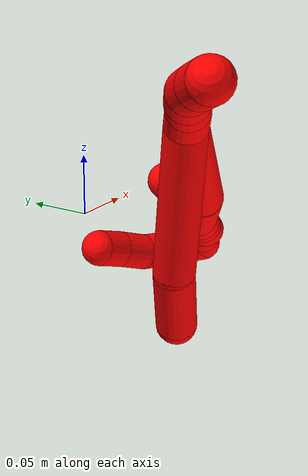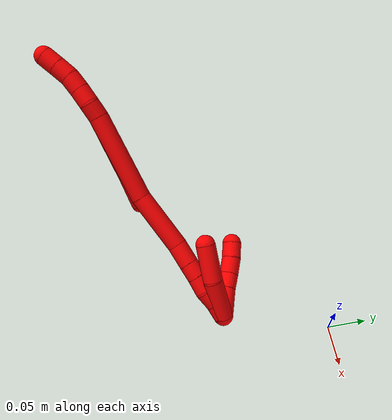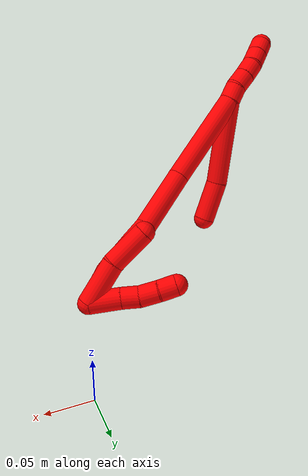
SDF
<sdf version="1.7">
 <world name="default">
  <model name="2">
   <static>0</static>
   <link name="2">
    <collision name="collision-cylinder-e_1_2_8">
     <pose>-0.008513 -0.026144 -0.042823 2.59347 -0.168069 -0.582214</pose>
     <geometry><cylinder><radius>0.0125</radius><length>0.101779</length></cylinder></geometry>
     <surface>
      <friction><ode><mu>1.16</mu><mu2>1.16</mu2><slip1>0</slip1><slip2>0</slip2></ode></friction>
      <contact><ode><kp>1e+06</kp><kd>1</kd><max_vel>0</max_vel><min_depth>0.001</min_depth></ode></contact>
     </surface>
    </collision>
    <visual name="visual-cylinder-e_1_2_8">
     <pose>-0.008513 -0.026144 -0.042823 2.59347 -0.168069 -0.582214</pose>
     <geometry><cylinder><radius>0.0125</radius><length>0.101779</length></cylinder></geometry>
     <material><ambient>1 0 0 1</ambient></material>
    </visual>
    <collision name="collision-cylinder-e_2_8_6">
     <pose>-0.0187 -0.060627 -0.108206 2.78755 -0.069496 -0.383846</pose>
     <geometry><cylinder><radius>0.0125</radius><length>0.048221</length></cylinder></geometry>
     <surface>
      <friction><ode><mu>1.16</mu><mu2>1.16</mu2><slip1>0</slip1><slip2>0</slip2></ode></friction>
      <contact><ode><kp>1e+06</kp><kd>1</kd><max_vel>0</max_vel><min_depth>0.001</min_depth></ode></contact>
     </surface>
    </collision>
    <visual name="visual-cylinder-e_2_8_6">
     <pose>-0.0187 -0.060627 -0.108206 2.78755 -0.069496 -0.383846</pose>
     <geometry><cylinder><radius>0.0125</radius><length>0.048221</length></cylinder></geometry>
     <material><ambient>1 0 0 1</ambient></material>
    </visual>
    <collision name="collision-cylinder-e_1_2_9">
     <pose>0.001302 9.3e-05 0.009914 -0.009346 0.130563 -0.000611</pose>
     <geometry><cylinder><radius>0.0125</radius><length>0.02</length></cylinder></geometry>
     <surface>
      <friction><ode><mu>1.16</mu><mu2>1.16</mu2><slip1>0</slip1><slip2>0</slip2></ode></friction>
      <contact><ode><kp>1e+06</kp><kd>1</kd><max_vel>0</max_vel><min_depth>0.001</min_depth></ode></contact>
     </surface>
    </collision>
    <visual name="visual-cylinder-e_1_2_9">
     <pose>0.001302 9.3e-05 0.009914 -0.009346 0.130563 -0.000611</pose>
     <geometry><cylinder><radius>0.0125</radius><length>0.02</length></cylinder></geometry>
     <material><ambient>1 0 0 1</ambient></material>
    </visual>
    <collision name="collision-cylinder-e_2_9_10">
     <pose>0.002982 -0.002135 0.029549 0.234358 0.037866 0.004458</pose>
     <geometry><cylinder><radius>0.0125</radius><length>0.02</length></cylinder></geometry>
     <surface>
      <friction><ode><mu>1.16</mu><mu2>1.16</mu2><slip1>0</slip1><slip2>0</slip2></ode></friction>
      <contact><ode><kp>1e+06</kp><kd>1</kd><max_vel>0</max_vel><min_depth>0.001</min_depth></ode></contact>
     </surface>
    </collision>
    <visual name="visual-cylinder-e_2_9_10">
     <pose>0.002982 -0.002135 0.029549 0.234358 0.037866 0.004458</pose>
     <geometry><cylinder><radius>0.0125</radius><length>0.02</length></cylinder></geometry>
     <material><ambient>1 0 0 1</ambient></material>
    </visual>
    <collision name="collision-cylinder-e_3_10_11">
     <pose>0.00426 -0.006789 0.04895 0.236501 0.090053 0.010706</pose>
     <geometry><cylinder><radius>0.0125</radius><length>0.02</length></cylinder></geometry>
     <surface>
      <friction><ode><mu>1.16</mu><mu2>1.16</mu2><slip1>0</slip1><slip2>0</slip2></ode></friction>
      <contact><ode><kp>1e+06</kp><kd>1</kd><max_vel>0</max_vel><min_depth>0.001</min_depth></ode></contact>
     </surface>
    </collision>
    <visual name="visual-cylinder-e_3_10_11">
     <pose>0.00426 -0.006789 0.04895 0.236501 0.090053 0.010706</pose>
     <geometry><cylinder><radius>0.0125</radius><length>0.02</length></cylinder></geometry>
     <material><ambient>1 0 0 1</ambient></material>
    </visual>
    <collision name="collision-cylinder-e_4_11_12">
     <pose>0.007977 -0.012264 0.067699 0.333546 0.285584 0.048394</pose>
     <geometry><cylinder><radius>0.0125</radius><length>0.02</length></cylinder></geometry>
     <surface>
      <friction><ode><mu>1.16</mu><mu2>1.16</mu2><slip1>0</slip1><slip2>0</slip2></ode></friction>
      <contact><ode><kp>1e+06</kp><kd>1</kd><max_vel>0</max_vel><min_depth>0.001</min_depth></ode></contact>
     </surface>
    </collision>
    <visual name="visual-cylinder-e_4_11_12">
     <pose>0.007977 -0.012264 0.067699 0.333546 0.285584 0.048394</pose>
     <geometry><cylinder><radius>0.0125</radius><length>0.02</length></cylinder></geometry>
     <material><ambient>1 0 0 1</ambient></material>
    </visual>
    <collision name="collision-cylinder-e_5_12_5">
     <pose>0.013742 -0.01872 0.085727 0.354246 0.299209 0.053948</pose>
     <geometry><cylinder><radius>0.0125</radius><length>0.02</length></cylinder></geometry>
     <surface>
      <friction><ode><mu>1.16</mu><mu2>1.16</mu2><slip1>0</slip1><slip2>0</slip2></ode></friction>
      <contact><ode><kp>1e+06</kp><kd>1</kd><max_vel>0</max_vel><min_depth>0.001</min_depth></ode></contact>
     </surface>
    </collision>
    <visual name="visual-cylinder-e_5_12_5">
     <pose>0.013742 -0.01872 0.085727 0.354246 0.299209 0.053948</pose>
     <geometry><cylinder><radius>0.0125</radius><length>0.02</length></cylinder></geometry>
     <material><ambient>1 0 0 1</ambient></material>
    </visual>
    <collision name="collision-cylinder-e_1_2_13">
     <pose>0.001168 0.002166 -0.056493 -3.10328 0.020651 -0.988623</pose>
     <geometry><cylinder><radius>0.0125</radius><length>0.113093</length></cylinder></geometry>
     <surface>
      <friction><ode><mu>1.16</mu><mu2>1.16</mu2><slip1>0</slip1><slip2>0</slip2></ode></friction>
      <contact><ode><kp>1e+06</kp><kd>1</kd><max_vel>0</max_vel><min_depth>0.001</min_depth></ode></contact>
     </surface>
    </collision>
    <visual name="visual-cylinder-e_1_2_13">
     <pose>0.001168 0.002166 -0.056493 -3.10328 0.020651 -0.988623</pose>
     <geometry><cylinder><radius>0.0125</radius><length>0.113093</length></cylinder></geometry>
     <material><ambient>1 0 0 1</ambient></material>
    </visual>
    <collision name="collision-cylinder-e_2_13_14">
     <pose>-0.001103 0.012246 -0.150079 -2.93138 -0.090398 0.810062</pose>
     <geometry><cylinder><radius>0.0125</radius><length>0.076168</length></cylinder></geometry>
     <surface>
      <friction><ode><mu>1.16</mu><mu2>1.16</mu2><slip1>0</slip1><slip2>0</slip2></ode></friction>
      <contact><ode><kp>1e+06</kp><kd>1</kd><max_vel>0</max_vel><min_depth>0.001</min_depth></ode></contact>
     </surface>
    </collision>
    <visual name="visual-cylinder-e_2_13_14">
     <pose>-0.001103 0.012246 -0.150079 -2.93138 -0.090398 0.810062</pose>
     <geometry><cylinder><radius>0.0125</radius><length>0.076168</length></cylinder></geometry>
     <material><ambient>1 0 0 1</ambient></material>
    </visual>
    <collision name="collision-cylinder-e_3_14_15">
     <pose>-0.004125 0.02375 -0.20083 -2.88451 0.029449 -0.22688</pose>
     <geometry><cylinder><radius>0.0125</radius><length>0.028254</length></cylinder></geometry>
     <surface>
      <friction><ode><mu>1.16</mu><mu2>1.16</mu2><slip1>0</slip1><slip2>0</slip2></ode></friction>
      <contact><ode><kp>1e+06</kp><kd>1</kd><max_vel>0</max_vel><min_depth>0.001</min_depth></ode></contact>
     </surface>
    </collision>
    <visual name="visual-cylinder-e_3_14_15">
     <pose>-0.004125 0.02375 -0.20083 -2.88451 0.029449 -0.22688</pose>
     <geometry><cylinder><radius>0.0125</radius><length>0.028254</length></cylinder></geometry>
     <material><ambient>1 0 0 1</ambient></material>
    </visual>
    <collision name="collision-cylinder-e_4_15_16">
     <pose>-0.003537 0.029827 -0.224185 -2.89061 0.017203 -0.136158</pose>
     <geometry><cylinder><radius>0.0125</radius><length>0.020027</length></cylinder></geometry>
     <surface>
      <friction><ode><mu>1.16</mu><mu2>1.16</mu2><slip1>0</slip1><slip2>0</slip2></ode></friction>
      <contact><ode><kp>1e+06</kp><kd>1</kd><max_vel>0</max_vel><min_depth>0.001</min_depth></ode></contact>
     </surface>
    </collision>
    <visual name="visual-cylinder-e_4_15_16">
     <pose>-0.003537 0.029827 -0.224185 -2.89061 0.017203 -0.136158</pose>
     <geometry><cylinder><radius>0.0125</radius><length>0.020027</length></cylinder></geometry>
     <material><ambient>1 0 0 1</ambient></material>
    </visual>
    <collision name="collision-cylinder-e_5_16_17">
     <pose>-0.002706 0.034509 -0.244098 -2.9299 0.062922 -0.57598</pose>
     <geometry><cylinder><radius>0.0125</radius><length>0.020939</length></cylinder></geometry>
     <surface>
      <friction><ode><mu>1.16</mu><mu2>1.16</mu2><slip1>0</slip1><slip2>0</slip2></ode></friction>
      <contact><ode><kp>1e+06</kp><kd>1</kd><max_vel>0</max_vel><min_depth>0.001</min_depth></ode></contact>
     </surface>
    </collision>
    <visual name="visual-cylinder-e_5_16_17">
     <pose>-0.002706 0.034509 -0.244098 -2.9299 0.062922 -0.57598</pose>
     <geometry><cylinder><radius>0.0125</radius><length>0.020939</length></cylinder></geometry>
     <material><ambient>1 0 0 1</ambient></material>
    </visual>
    <collision name="collision-cylinder-e_6_17_18">
     <pose>-0.003981 0.038146 -0.264467 -3.00059 -0.186369 1.8474</pose>
     <geometry><cylinder><radius>0.0125</radius><length>0.020871</length></cylinder></geometry>
     <surface>
      <friction><ode><mu>1.16</mu><mu2>1.16</mu2><slip1>0</slip1><slip2>0</slip2></ode></friction>
      <contact><ode><kp>1e+06</kp><kd>1</kd><max_vel>0</max_vel><min_depth>0.001</min_depth></ode></contact>
     </surface>
    </collision>
    <visual name="visual-cylinder-e_6_17_18">
     <pose>-0.003981 0.038146 -0.264467 -3.00059 -0.186369 1.8474</pose>
     <geometry><cylinder><radius>0.0125</radius><length>0.020871</length></cylinder></geometry>
     <material><ambient>1 0 0 1</ambient></material>
    </visual>
    <collision name="collision-cylinder-e_7_18_1">
     <pose>-0.006253 0.040527 -0.284896 -3.05038 -0.032769 0.689393</pose>
     <geometry><cylinder><radius>0.0125</radius><length>0.020649</length></cylinder></geometry>
     <surface>
      <friction><ode><mu>1.16</mu><mu2>1.16</mu2><slip1>0</slip1><slip2>0</slip2></ode></friction>
      <contact><ode><kp>1e+06</kp><kd>1</kd><max_vel>0</max_vel><min_depth>0.001</min_depth></ode></contact>
     </surface>
    </collision>
    <visual name="visual-cylinder-e_7_18_1">
     <pose>-0.006253 0.040527 -0.284896 -3.05038 -0.032769 0.689393</pose>
     <geometry><cylinder><radius>0.0125</radius><length>0.020649</length></cylinder></geometry>
     <material><ambient>1 0 0 1</ambient></material>
    </visual>
    <collision name="collision-cylinder-e_1_1_19">
     <pose>-0.019443 0.036124 -0.283406 0.426228 -0.782674 -0.178109</pose>
     <geometry><cylinder><radius>0.0125</radius><length>0.03645</length></cylinder></geometry>
     <surface>
      <friction><ode><mu>1.16</mu><mu2>1.16</mu2><slip1>0</slip1><slip2>0</slip2></ode></friction>
      <contact><ode><kp>1e+06</kp><kd>1</kd><max_vel>0</max_vel><min_depth>0.001</min_depth></ode></contact>
     </surface>
    </collision>
    <visual name="visual-cylinder-e_1_1_19">
     <pose>-0.019443 0.036124 -0.283406 0.426228 -0.782674 -0.178109</pose>
     <geometry><cylinder><radius>0.0125</radius><length>0.03645</length></cylinder></geometry>
     <material><ambient>1 0 0 1</ambient></material>
    </visual>
    <collision name="collision-cylinder-e_2_19_20">
     <pose>-0.040334 0.028137 -0.265485 0.405831 -0.876066 -0.192142</pose>
     <geometry><cylinder><radius>0.0125</radius><length>0.020929</length></cylinder></geometry>
     <surface>
      <friction><ode><mu>1.16</mu><mu2>1.16</mu2><slip1>0</slip1><slip2>0</slip2></ode></friction>
      <contact><ode><kp>1e+06</kp><kd>1</kd><max_vel>0</max_vel><min_depth>0.001</min_depth></ode></contact>
     </surface>
    </collision>
    <visual name="visual-cylinder-e_2_19_20">
     <pose>-0.040334 0.028137 -0.265485 0.405831 -0.876066 -0.192142</pose>
     <geometry><cylinder><radius>0.0125</radius><length>0.020929</length></cylinder></geometry>
     <material><ambient>1 0 0 1</ambient></material>
    </visual>
    <collision name="collision-cylinder-e_3_20_21">
     <pose>-0.056207 0.024476 -0.251282 0.12558 -0.767975 -0.050796</pose>
     <geometry><cylinder><radius>0.0125</radius><length>0.022552</length></cylinder></geometry>
     <surface>
      <friction><ode><mu>1.16</mu><mu2>1.16</mu2><slip1>0</slip1><slip2>0</slip2></ode></friction>
      <contact><ode><kp>1e+06</kp><kd>1</kd><max_vel>0</max_vel><min_depth>0.001</min_depth></ode></contact>
     </surface>
    </collision>
    <visual name="visual-cylinder-e_3_20_21">
     <pose>-0.056207 0.024476 -0.251282 0.12558 -0.767975 -0.050796</pose>
     <geometry><cylinder><radius>0.0125</radius><length>0.022552</length></cylinder></geometry>
     <material><ambient>1 0 0 1</ambient></material>
    </visual>
    <collision name="collision-cylinder-e_4_21_4">
     <pose>-0.070241 0.021592 -0.235571 0.239136 -0.666165 -0.083083</pose>
     <geometry><cylinder><radius>0.0125</radius><length>0.020069</length></cylinder></geometry>
     <surface>
      <friction><ode><mu>1.16</mu><mu2>1.16</mu2><slip1>0</slip1><slip2>0</slip2></ode></friction>
      <contact><ode><kp>1e+06</kp><kd>1</kd><max_vel>0</max_vel><min_depth>0.001</min_depth></ode></contact>
     </surface>
    </collision>
    <visual name="visual-cylinder-e_4_21_4">
     <pose>-0.070241 0.021592 -0.235571 0.239136 -0.666165 -0.083083</pose>
     <geometry><cylinder><radius>0.0125</radius><length>0.020069</length></cylinder></geometry>
     <material><ambient>1 0 0 1</ambient></material>
    </visual>
    <collision name="collision-cylinder-e_1_1_22">
     <pose>-0.009211 0.046575 -0.269639 -0.197482 -0.100267 0.009941</pose>
     <geometry><cylinder><radius>0.0125</radius><length>0.052339</length></cylinder></geometry>
     <surface>
      <friction><ode><mu>1.16</mu><mu2>1.16</mu2><slip1>0</slip1><slip2>0</slip2></ode></friction>
      <contact><ode><kp>1e+06</kp><kd>1</kd><max_vel>0</max_vel><min_depth>0.001</min_depth></ode></contact>
     </surface>
    </collision>
    <visual name="visual-cylinder-e_1_1_22">
     <pose>-0.009211 0.046575 -0.269639 -0.197482 -0.100267 0.009941</pose>
     <geometry><cylinder><radius>0.0125</radius><length>0.052339</length></cylinder></geometry>
     <material><ambient>1 0 0 1</ambient></material>
    </visual>
    <collision name="collision-cylinder-e_2_22_3">
     <pose>-0.018434 0.05261 -0.221229 -0.040432 -0.280773 0.005714</pose>
     <geometry><cylinder><radius>0.0125</radius><length>0.047661</length></cylinder></geometry>
     <surface>
      <friction><ode><mu>1.16</mu><mu2>1.16</mu2><slip1>0</slip1><slip2>0</slip2></ode></friction>
      <contact><ode><kp>1e+06</kp><kd>1</kd><max_vel>0</max_vel><min_depth>0.001</min_depth></ode></contact>
     </surface>
    </collision>
    <visual name="visual-cylinder-e_2_22_3">
     <pose>-0.018434 0.05261 -0.221229 -0.040432 -0.280773 0.005714</pose>
     <geometry><cylinder><radius>0.0125</radius><length>0.047661</length></cylinder></geometry>
     <material><ambient>1 0 0 1</ambient></material>
    </visual>
    <collision name="collision-sphere-3">
     <pose>-0.025037 0.053535 -0.19835 0 -0 0</pose>
     <geometry><sphere><radius>0.0125</radius></sphere></geometry>
     <surface>
      <friction><ode><mu>1.16</mu><mu2>1.16</mu2><slip1>0</slip1><slip2>0</slip2></ode></friction>
      <contact><ode><kp>1e+06</kp><kd>1</kd><max_vel>0</max_vel><min_depth>0.001</min_depth></ode></contact>
     </surface>
    </collision>
    <visual name="visual-sphere-3">
     <pose>-0.025037 0.053535 -0.19835 0 -0 0</pose>
     <geometry><sphere><radius>0.0125</radius></sphere></geometry>
     <material><ambient>1 0 0 1</ambient></material>
    </visual>
    <collision name="collision-sphere-22">
     <pose>-0.011831 0.051684 -0.244107 0 -0 0</pose>
     <geometry><sphere><radius>0.0125</radius></sphere></geometry>
     <surface>
      <friction><ode><mu>1.16</mu><mu2>1.16</mu2><slip1>0</slip1><slip2>0</slip2></ode></friction>
      <contact><ode><kp>1e+06</kp><kd>1</kd><max_vel>0</max_vel><min_depth>0.001</min_depth></ode></contact>
     </surface>
    </collision>
    <visual name="visual-sphere-22">
     <pose>-0.011831 0.051684 -0.244107 0 -0 0</pose>
     <geometry><sphere><radius>0.0125</radius></sphere></geometry>
     <material><ambient>1 0 0 1</ambient></material>
    </visual>
    <collision name="collision-sphere-4">
     <pose>-0.076442 0.019723 -0.227906 0 -0 0</pose>
     <geometry><sphere><radius>0.0125</radius></sphere></geometry>
     <surface>
      <friction><ode><mu>1.16</mu><mu2>1.16</mu2><slip1>0</slip1><slip2>0</slip2></ode></friction>
      <contact><ode><kp>1e+06</kp><kd>1</kd><max_vel>0</max_vel><min_depth>0.001</min_depth></ode></contact>
     </surface>
    </collision>
    <visual name="visual-sphere-4">
     <pose>-0.076442 0.019723 -0.227906 0 -0 0</pose>
     <geometry><sphere><radius>0.0125</radius></sphere></geometry>
     <material><ambient>1 0 0 1</ambient></material>
    </visual>
    <collision name="collision-sphere-21">
     <pose>-0.06404 0.02346 -0.243235 0 -0 0</pose>
     <geometry><sphere><radius>0.0125</radius></sphere></geometry>
     <surface>
      <friction><ode><mu>1.16</mu><mu2>1.16</mu2><slip1>0</slip1><slip2>0</slip2></ode></friction>
      <contact><ode><kp>1e+06</kp><kd>1</kd><max_vel>0</max_vel><min_depth>0.001</min_depth></ode></contact>
     </surface>
    </collision>
    <visual name="visual-sphere-21">
     <pose>-0.06404 0.02346 -0.243235 0 -0 0</pose>
     <geometry><sphere><radius>0.0125</radius></sphere></geometry>
     <material><ambient>1 0 0 1</ambient></material>
    </visual>
    <collision name="collision-sphere-20">
     <pose>-0.048373 0.025492 -0.25933 0 -0 0</pose>
     <geometry><sphere><radius>0.0125</radius></sphere></geometry>
     <surface>
      <friction><ode><mu>1.16</mu><mu2>1.16</mu2><slip1>0</slip1><slip2>0</slip2></ode></friction>
      <contact><ode><kp>1e+06</kp><kd>1</kd><max_vel>0</max_vel><min_depth>0.001</min_depth></ode></contact>
     </surface>
    </collision>
    <visual name="visual-sphere-20">
     <pose>-0.048373 0.025492 -0.25933 0 -0 0</pose>
     <geometry><sphere><radius>0.0125</radius></sphere></geometry>
     <material><ambient>1 0 0 1</ambient></material>
    </visual>
    <collision name="collision-sphere-11">
     <pose>0.00516 -0.009123 0.058633 0 -0 0</pose>
     <geometry><sphere><radius>0.0125</radius></sphere></geometry>
     <surface>
      <friction><ode><mu>1.16</mu><mu2>1.16</mu2><slip1>0</slip1><slip2>0</slip2></ode></friction>
      <contact><ode><kp>1e+06</kp><kd>1</kd><max_vel>0</max_vel><min_depth>0.001</min_depth></ode></contact>
     </surface>
    </collision>
    <visual name="visual-sphere-11">
     <pose>0.00516 -0.009123 0.058633 0 -0 0</pose>
     <geometry><sphere><radius>0.0125</radius></sphere></geometry>
     <material><ambient>1 0 0 1</ambient></material>
    </visual>
    <collision name="collision-sphere-10">
     <pose>0.003361 -0.004456 0.039268 0 -0 0</pose>
     <geometry><sphere><radius>0.0125</radius></sphere></geometry>
     <surface>
      <friction><ode><mu>1.16</mu><mu2>1.16</mu2><slip1>0</slip1><slip2>0</slip2></ode></friction>
      <contact><ode><kp>1e+06</kp><kd>1</kd><max_vel>0</max_vel><min_depth>0.001</min_depth></ode></contact>
     </surface>
    </collision>
    <visual name="visual-sphere-10">
     <pose>0.003361 -0.004456 0.039268 0 -0 0</pose>
     <geometry><sphere><radius>0.0125</radius></sphere></geometry>
     <material><ambient>1 0 0 1</ambient></material>
    </visual>
    <collision name="collision-sphere-6">
     <pose>-0.020374 -0.068966 -0.130766 0 -0 0</pose>
     <geometry><sphere><radius>0.0125</radius></sphere></geometry>
     <surface>
      <friction><ode><mu>1.16</mu><mu2>1.16</mu2><slip1>0</slip1><slip2>0</slip2></ode></friction>
      <contact><ode><kp>1e+06</kp><kd>1</kd><max_vel>0</max_vel><min_depth>0.001</min_depth></ode></contact>
     </surface>
    </collision>
    <visual name="visual-sphere-6">
     <pose>-0.020374 -0.068966 -0.130766 0 -0 0</pose>
     <geometry><sphere><radius>0.0125</radius></sphere></geometry>
     <material><ambient>1 0 0 1</ambient></material>
    </visual>
    <collision name="collision-sphere-9">
     <pose>0.002604 0.000185 0.019829 0 -0 0</pose>
     <geometry><sphere><radius>0.0125</radius></sphere></geometry>
     <surface>
      <friction><ode><mu>1.16</mu><mu2>1.16</mu2><slip1>0</slip1><slip2>0</slip2></ode></friction>
      <contact><ode><kp>1e+06</kp><kd>1</kd><max_vel>0</max_vel><min_depth>0.001</min_depth></ode></contact>
     </surface>
    </collision>
    <visual name="visual-sphere-9">
     <pose>0.002604 0.000185 0.019829 0 -0 0</pose>
     <geometry><sphere><radius>0.0125</radius></sphere></geometry>
     <material><ambient>1 0 0 1</ambient></material>
    </visual>
    <collision name="collision-sphere-2">
     <geometry><sphere><radius>0.0125</radius></sphere></geometry>
     <surface>
      <friction><ode><mu>1.16</mu><mu2>1.16</mu2><slip1>0</slip1><slip2>0</slip2></ode></friction>
      <contact><ode><kp>1e+06</kp><kd>1</kd><max_vel>0</max_vel><min_depth>0.001</min_depth></ode></contact>
     </surface>
    </collision>
    <visual name="visual-sphere-2">
     <geometry><sphere><radius>0.0125</radius></sphere></geometry>
     <material><ambient>1 0 0 1</ambient></material>
    </visual>
    <collision name="collision-sphere-19">
     <pose>-0.032295 0.030782 -0.27164 0 -0 0</pose>
     <geometry><sphere><radius>0.0125</radius></sphere></geometry>
     <surface>
      <friction><ode><mu>1.16</mu><mu2>1.16</mu2><slip1>0</slip1><slip2>0</slip2></ode></friction>
      <contact><ode><kp>1e+06</kp><kd>1</kd><max_vel>0</max_vel><min_depth>0.001</min_depth></ode></contact>
     </surface>
    </collision>
    <visual name="visual-sphere-19">
     <pose>-0.032295 0.030782 -0.27164 0 -0 0</pose>
     <geometry><sphere><radius>0.0125</radius></sphere></geometry>
     <material><ambient>1 0 0 1</ambient></material>
    </visual>
    <collision name="collision-sphere-8">
     <pose>-0.017026 -0.052288 -0.085645 0 -0 0</pose>
     <geometry><sphere><radius>0.0125</radius></sphere></geometry>
     <surface>
      <friction><ode><mu>1.16</mu><mu2>1.16</mu2><slip1>0</slip1><slip2>0</slip2></ode></friction>
      <contact><ode><kp>1e+06</kp><kd>1</kd><max_vel>0</max_vel><min_depth>0.001</min_depth></ode></contact>
     </surface>
    </collision>
    <visual name="visual-sphere-8">
     <pose>-0.017026 -0.052288 -0.085645 0 -0 0</pose>
     <geometry><sphere><radius>0.0125</radius></sphere></geometry>
     <material><ambient>1 0 0 1</ambient></material>
    </visual>
    <collision name="collision-sphere-12">
     <pose>0.010794 -0.015405 0.076765 0 -0 0</pose>
     <geometry><sphere><radius>0.0125</radius></sphere></geometry>
     <surface>
      <friction><ode><mu>1.16</mu><mu2>1.16</mu2><slip1>0</slip1><slip2>0</slip2></ode></friction>
      <contact><ode><kp>1e+06</kp><kd>1</kd><max_vel>0</max_vel><min_depth>0.001</min_depth></ode></contact>
     </surface>
    </collision>
    <visual name="visual-sphere-12">
     <pose>0.010794 -0.015405 0.076765 0 -0 0</pose>
     <geometry><sphere><radius>0.0125</radius></sphere></geometry>
     <material><ambient>1 0 0 1</ambient></material>
    </visual>
    <collision name="collision-sphere-5">
     <pose>0.016689 -0.022035 0.09469 0 -0 0</pose>
     <geometry><sphere><radius>0.0125</radius></sphere></geometry>
     <surface>
      <friction><ode><mu>1.16</mu><mu2>1.16</mu2><slip1>0</slip1><slip2>0</slip2></ode></friction>
      <contact><ode><kp>1e+06</kp><kd>1</kd><max_vel>0</max_vel><min_depth>0.001</min_depth></ode></contact>
     </surface>
    </collision>
    <visual name="visual-sphere-5">
     <pose>0.016689 -0.022035 0.09469 0 -0 0</pose>
     <geometry><sphere><radius>0.0125</radius></sphere></geometry>
     <material><ambient>1 0 0 1</ambient></material>
    </visual>
    <collision name="collision-sphere-13">
     <pose>0.002335 0.004331 -0.112986 0 -0 0</pose>
     <geometry><sphere><radius>0.0125</radius></sphere></geometry>
     <surface>
      <friction><ode><mu>1.16</mu><mu2>1.16</mu2><slip1>0</slip1><slip2>0</slip2></ode></friction>
      <contact><ode><kp>1e+06</kp><kd>1</kd><max_vel>0</max_vel><min_depth>0.001</min_depth></ode></contact>
     </surface>
    </collision>
    <visual name="visual-sphere-13">
     <pose>0.002335 0.004331 -0.112986 0 -0 0</pose>
     <geometry><sphere><radius>0.0125</radius></sphere></geometry>
     <material><ambient>1 0 0 1</ambient></material>
    </visual>
    <collision name="collision-sphere-14">
     <pose>-0.004541 0.02016 -0.187173 0 -0 0</pose>
     <geometry><sphere><radius>0.0125</radius></sphere></geometry>
     <surface>
      <friction><ode><mu>1.16</mu><mu2>1.16</mu2><slip1>0</slip1><slip2>0</slip2></ode></friction>
      <contact><ode><kp>1e+06</kp><kd>1</kd><max_vel>0</max_vel><min_depth>0.001</min_depth></ode></contact>
     </surface>
    </collision>
    <visual name="visual-sphere-14">
     <pose>-0.004541 0.02016 -0.187173 0 -0 0</pose>
     <geometry><sphere><radius>0.0125</radius></sphere></geometry>
     <material><ambient>1 0 0 1</ambient></material>
    </visual>
    <collision name="collision-sphere-15">
     <pose>-0.003709 0.027341 -0.214487 0 -0 0</pose>
     <geometry><sphere><radius>0.0125</radius></sphere></geometry>
     <surface>
      <friction><ode><mu>1.16</mu><mu2>1.16</mu2><slip1>0</slip1><slip2>0</slip2></ode></friction>
      <contact><ode><kp>1e+06</kp><kd>1</kd><max_vel>0</max_vel><min_depth>0.001</min_depth></ode></contact>
     </surface>
    </collision>
    <visual name="visual-sphere-15">
     <pose>-0.003709 0.027341 -0.214487 0 -0 0</pose>
     <geometry><sphere><radius>0.0125</radius></sphere></geometry>
     <material><ambient>1 0 0 1</ambient></material>
    </visual>
    <collision name="collision-sphere-16">
     <pose>-0.003364 0.032314 -0.233883 0 -0 0</pose>
     <geometry><sphere><radius>0.0125</radius></sphere></geometry>
     <surface>
      <friction><ode><mu>1.16</mu><mu2>1.16</mu2><slip1>0</slip1><slip2>0</slip2></ode></friction>
      <contact><ode><kp>1e+06</kp><kd>1</kd><max_vel>0</max_vel><min_depth>0.001</min_depth></ode></contact>
     </surface>
    </collision>
    <visual name="visual-sphere-16">
     <pose>-0.003364 0.032314 -0.233883 0 -0 0</pose>
     <geometry><sphere><radius>0.0125</radius></sphere></geometry>
     <material><ambient>1 0 0 1</ambient></material>
    </visual>
    <collision name="collision-sphere-17">
     <pose>-0.002048 0.036704 -0.254314 0 -0 0</pose>
     <geometry><sphere><radius>0.0125</radius></sphere></geometry>
     <surface>
      <friction><ode><mu>1.16</mu><mu2>1.16</mu2><slip1>0</slip1><slip2>0</slip2></ode></friction>
      <contact><ode><kp>1e+06</kp><kd>1</kd><max_vel>0</max_vel><min_depth>0.001</min_depth></ode></contact>
     </surface>
    </collision>
    <visual name="visual-sphere-17">
     <pose>-0.002048 0.036704 -0.254314 0 -0 0</pose>
     <geometry><sphere><radius>0.0125</radius></sphere></geometry>
     <material><ambient>1 0 0 1</ambient></material>
    </visual>
    <collision name="collision-sphere-18">
     <pose>-0.005915 0.039587 -0.27462 0 -0 0</pose>
     <geometry><sphere><radius>0.0125</radius></sphere></geometry>
     <surface>
      <friction><ode><mu>1.16</mu><mu2>1.16</mu2><slip1>0</slip1><slip2>0</slip2></ode></friction>
      <contact><ode><kp>1e+06</kp><kd>1</kd><max_vel>0</max_vel><min_depth>0.001</min_depth></ode></contact>
     </surface>
    </collision>
    <visual name="visual-sphere-18">
     <pose>-0.005915 0.039587 -0.27462 0 -0 0</pose>
     <geometry><sphere><radius>0.0125</radius></sphere></geometry>
     <material><ambient>1 0 0 1</ambient></material>
    </visual>
    <collision name="collision-sphere-1">
     <pose>-0.006591 0.041467 -0.295172 0 -0 0</pose>
     <geometry><sphere><radius>0.0125</radius></sphere></geometry>
     <surface>
      <friction><ode><mu>1.16</mu><mu2>1.16</mu2><slip1>0</slip1><slip2>0</slip2></ode></friction>
      <contact><ode><kp>1e+06</kp><kd>1</kd><max_vel>0</max_vel><min_depth>0.001</min_depth></ode></contact>
     </surface>
    </collision>
    <visual name="visual-sphere-1">
     <pose>-0.006591 0.041467 -0.295172 0 -0 0</pose>
     <geometry><sphere><radius>0.0125</radius></sphere></geometry>
     <material><ambient>1 0 0 1</ambient></material>
    </visual>
    <inertial>
     <pose>-0.009549 0.008343 -0.133566 0 -0 0</pose>
     <mass>0.75</mass>
     <inertia><ixx>9e-05</ixx><ixy>0</ixy><ixz>0</ixz><iyy>-0.000264</iyy><iyz>0</iyz><izz>5.2e-05</izz></inertia>
    </inertial>
   </link>
   <pose>-0.25775 -0.250571 0.171203 0.868852 -0.11344 -1.03901</pose>
  </model>
 </world>
</sdf>
